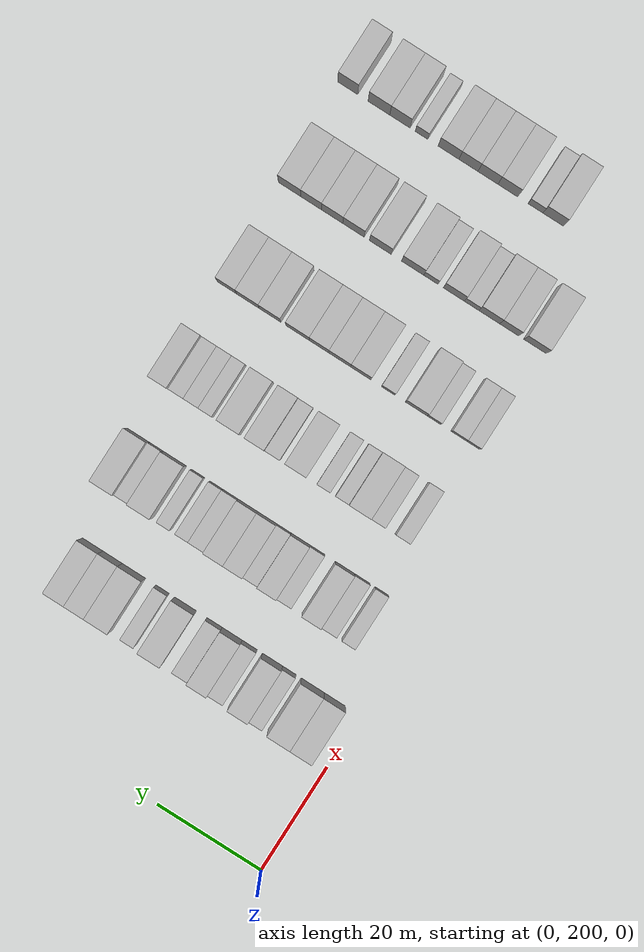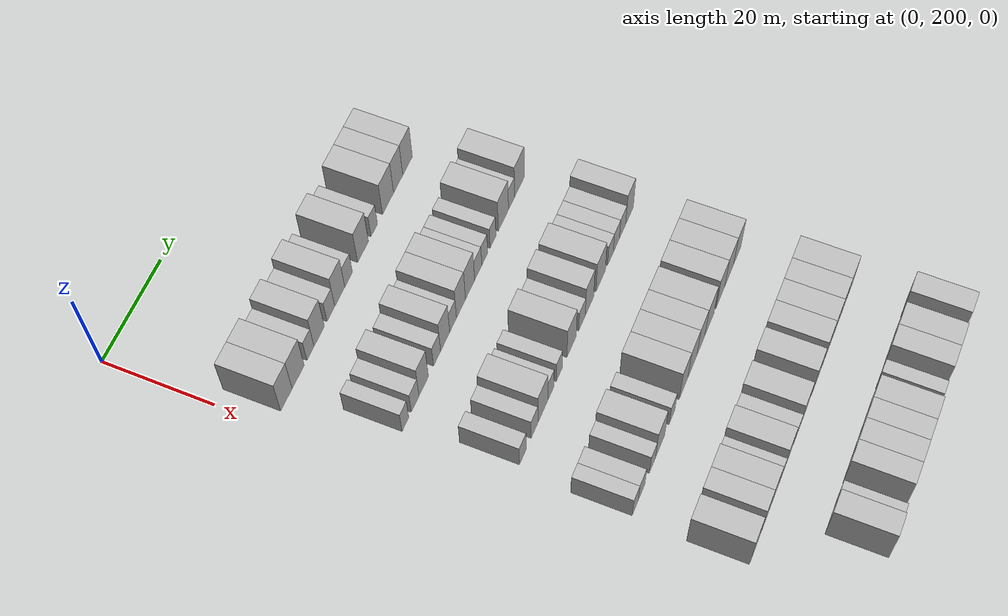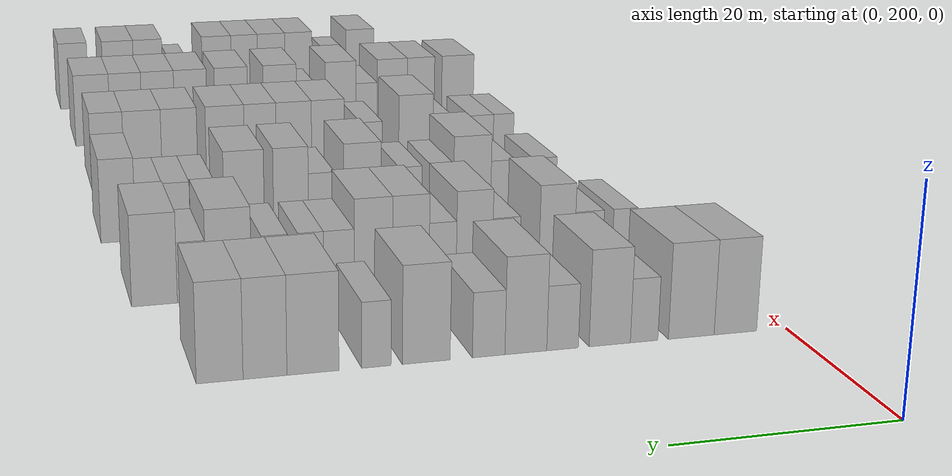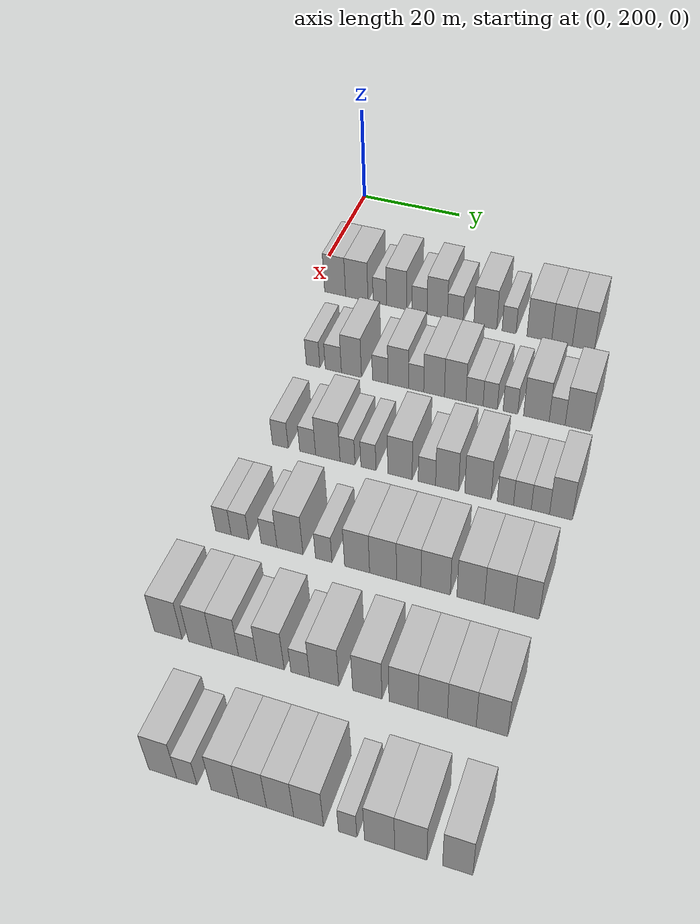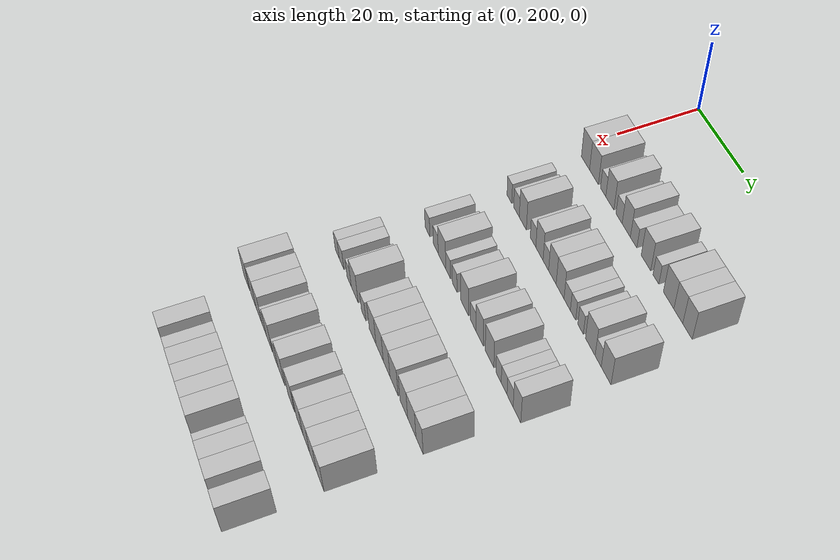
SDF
<sdf version="1.6">
 <world name="default">
  <model name="building_136">
   <static>1</static>
   <pose>25.0000 204.9654 0 0.000000 0.000000 0.000000</pose>
   <link name="link">
    <pose>0 0 4.50 0 0 0</pose>
    <collision name="collision"><geometry><box><size>10.0000 4.1305 9.0000</size></box></geometry></collision>
    <visual name="visual">
     <cast_shadows>0</cast_shadows>
     <geometry><box><size>10.0000 4.1305 9.0000</size></box></geometry>
     <material>
      <script>
       <uri>model://HANNAS_wall/materials/scripts</uri>
       <uri>model://HANNAS_wall/materials/textures</uri>
       <name>vrc/HANNAS_wall</name>
      </script>
     </material>
    </visual>
   </link>
  </model>
  <model name="building_137">
   <static>1</static>
   <pose>25.0000 209.2279 0 0.000000 0.000000 0.000000</pose>
   <link name="link">
    <pose>0 0 4.50 0 0 0</pose>
    <collision name="collision"><geometry><box><size>10.0000 4.3945 9.0000</size></box></geometry></collision>
    <visual name="visual">
     <cast_shadows>0</cast_shadows>
     <geometry><box><size>10.0000 4.3945 9.0000</size></box></geometry>
     <material>
      <script>
       <uri>model://HANNAS_wall/materials/scripts</uri>
       <uri>model://HANNAS_wall/materials/textures</uri>
       <name>vrc/HANNAS_wall</name>
      </script>
     </material>
    </visual>
   </link>
  </model>
  <model name="building_138">
   <static>1</static>
   <pose>25.0000 213.7284 0 0.000000 0.000000 0.000000</pose>
   <link name="link">
    <pose>0 0 3.00 0 0 0</pose>
    <collision name="collision"><geometry><box><size>10.0000 2.6065 6.0000</size></box></geometry></collision>
    <visual name="visual">
     <cast_shadows>0</cast_shadows>
     <geometry><box><size>10.0000 2.6065 6.0000</size></box></geometry>
     <material>
      <script>
       <uri>model://HANNAS_wall/materials/scripts</uri>
       <uri>model://HANNAS_wall/materials/textures</uri>
       <name>vrc/HANNAS_wall</name>
      </script>
     </material>
    </visual>
   </link>
  </model>
  <model name="building_139">
   <static>1</static>
   <pose>25.0000 216.9702 0 0.000000 0.000000 0.000000</pose>
   <link name="link">
    <pose>0 0 4.50 0 0 0</pose>
    <collision name="collision"><geometry><box><size>10.0000 3.8771 9.0000</size></box></geometry></collision>
    <visual name="visual">
     <cast_shadows>0</cast_shadows>
     <geometry><box><size>10.0000 3.8771 9.0000</size></box></geometry>
     <material>
      <script>
       <uri>model://HANNAS_wall/materials/scripts</uri>
       <uri>model://HANNAS_wall/materials/textures</uri>
       <name>vrc/HANNAS_wall</name>
      </script>
     </material>
    </visual>
   </link>
  </model>
  <model name="building_140">
   <static>1</static>
   <pose>25.0000 221.3733 0 0.000000 0.000000 0.000000</pose>
   <link name="link">
    <pose>0 0 3.00 0 0 0</pose>
    <collision name="collision"><geometry><box><size>10.0000 2.9291 6.0000</size></box></geometry></collision>
    <visual name="visual">
     <cast_shadows>0</cast_shadows>
     <geometry><box><size>10.0000 2.9291 6.0000</size></box></geometry>
     <material>
      <script>
       <uri>model://HANNAS_wall/materials/scripts</uri>
       <uri>model://HANNAS_wall/materials/textures</uri>
       <name>vrc/HANNAS_wall</name>
      </script>
     </material>
    </visual>
   </link>
  </model>
  <model name="building_141">
   <static>1</static>
   <pose>25.0000 224.7571 0 0.000000 0.000000 0.000000</pose>
   <link name="link">
    <pose>0 0 4.50 0 0 0</pose>
    <collision name="collision"><geometry><box><size>10.0000 3.8384 9.0000</size></box></geometry></collision>
    <visual name="visual">
     <cast_shadows>0</cast_shadows>
     <geometry><box><size>10.0000 3.8384 9.0000</size></box></geometry>
     <material>
      <script>
       <uri>model://HANNAS_wall/materials/scripts</uri>
       <uri>model://HANNAS_wall/materials/textures</uri>
       <name>vrc/HANNAS_wall</name>
      </script>
     </material>
    </visual>
   </link>
  </model>
  <model name="building_142">
   <static>1</static>
   <pose>25.0000 228.1530 0 0.000000 0.000000 0.000000</pose>
   <link name="link">
    <pose>0 0 3.00 0 0 0</pose>
    <collision name="collision"><geometry><box><size>10.0000 2.9534 6.0000</size></box></geometry></collision>
    <visual name="visual">
     <cast_shadows>0</cast_shadows>
     <geometry><box><size>10.0000 2.9534 6.0000</size></box></geometry>
     <material>
      <script>
       <uri>model://HANNAS_wall/materials/scripts</uri>
       <uri>model://HANNAS_wall/materials/textures</uri>
       <name>vrc/HANNAS_wall</name>
      </script>
     </material>
    </visual>
   </link>
  </model>
  <model name="building_143">
   <static>1</static>
   <pose>25.0000 233.7658 0 0.000000 0.000000 0.000000</pose>
   <link name="link">
    <pose>0 0 4.50 0 0 0</pose>
    <collision name="collision"><geometry><box><size>10.0000 4.2721 9.0000</size></box></geometry></collision>
    <visual name="visual">
     <cast_shadows>0</cast_shadows>
     <geometry><box><size>10.0000 4.2721 9.0000</size></box></geometry>
     <material>
      <script>
       <uri>model://HANNAS_wall/materials/scripts</uri>
       <uri>model://HANNAS_wall/materials/textures</uri>
       <name>vrc/HANNAS_wall</name>
      </script>
     </material>
    </visual>
   </link>
  </model>
  <model name="building_144">
   <static>1</static>
   <pose>25.0000 238.1874 0 0.000000 0.000000 0.000000</pose>
   <link name="link">
    <pose>0 0 3.00 0 0 0</pose>
    <collision name="collision"><geometry><box><size>10.0000 2.5711 6.0000</size></box></geometry></collision>
    <visual name="visual">
     <cast_shadows>0</cast_shadows>
     <geometry><box><size>10.0000 2.5711 6.0000</size></box></geometry>
     <material>
      <script>
       <uri>model://HANNAS_wall/materials/scripts</uri>
       <uri>model://HANNAS_wall/materials/textures</uri>
       <name>vrc/HANNAS_wall</name>
      </script>
     </material>
    </visual>
   </link>
  </model>
  <model name="building_145">
   <static>1</static>
   <pose>25.0000 243.7225 0 0.000000 0.000000 0.000000</pose>
   <link name="link">
    <pose>0 0 4.50 0 0 0</pose>
    <collision name="collision"><geometry><box><size>10.0000 4.4990 9.0000</size></box></geometry></collision>
    <visual name="visual">
     <cast_shadows>0</cast_shadows>
     <geometry><box><size>10.0000 4.4990 9.0000</size></box></geometry>
     <material>
      <script>
       <uri>model://HANNAS_wall/materials/scripts</uri>
       <uri>model://HANNAS_wall/materials/textures</uri>
       <name>vrc/HANNAS_wall</name>
      </script>
     </material>
    </visual>
   </link>
  </model>
  <model name="building_146">
   <static>1</static>
   <pose>25.0000 247.8467 0 0.000000 0.000000 0.000000</pose>
   <link name="link">
    <pose>0 0 4.50 0 0 0</pose>
    <collision name="collision"><geometry><box><size>10.0000 3.7493 9.0000</size></box></geometry></collision>
    <visual name="visual">
     <cast_shadows>0</cast_shadows>
     <geometry><box><size>10.0000 3.7493 9.0000</size></box></geometry>
     <material>
      <script>
       <uri>model://HANNAS_wall/materials/scripts</uri>
       <uri>model://HANNAS_wall/materials/textures</uri>
       <name>vrc/HANNAS_wall</name>
      </script>
     </material>
    </visual>
   </link>
  </model>
  <model name="building_147">
   <static>1</static>
   <pose>25.0000 251.6991 0 0.000000 0.000000 0.000000</pose>
   <link name="link">
    <pose>0 0 4.50 0 0 0</pose>
    <collision name="collision"><geometry><box><size>10.0000 3.9556 9.0000</size></box></geometry></collision>
    <visual name="visual">
     <cast_shadows>0</cast_shadows>
     <geometry><box><size>10.0000 3.9556 9.0000</size></box></geometry>
     <material>
      <script>
       <uri>model://HANNAS_wall/materials/scripts</uri>
       <uri>model://HANNAS_wall/materials/textures</uri>
       <name>vrc/HANNAS_wall</name>
      </script>
     </material>
    </visual>
   </link>
  </model>
  <model name="building_307">
   <static>1</static>
   <pose>44.0000 208.0831 0 0.000000 0.000000 0.000000</pose>
   <link name="link">
    <pose>0 0 3.00 0 0 0</pose>
    <collision name="collision"><geometry><box><size>10.0000 2.5302 6.0000</size></box></geometry></collision>
    <visual name="visual">
     <cast_shadows>0</cast_shadows>
     <geometry><box><size>10.0000 2.5302 6.0000</size></box></geometry>
     <material>
      <script>
       <uri>model://HANNAS_wall/materials/scripts</uri>
       <uri>model://HANNAS_wall/materials/textures</uri>
       <name>vrc/HANNAS_wall</name>
      </script>
     </material>
    </visual>
   </link>
  </model>
  <model name="building_308">
   <static>1</static>
   <pose>44.0000 211.8376 0 0.000000 0.000000 0.000000</pose>
   <link name="link">
    <pose>0 0 3.00 0 0 0</pose>
    <collision name="collision"><geometry><box><size>10.0000 2.9789 6.0000</size></box></geometry></collision>
    <visual name="visual">
     <cast_shadows>0</cast_shadows>
     <geometry><box><size>10.0000 2.9789 6.0000</size></box></geometry>
     <material>
      <script>
       <uri>model://HANNAS_wall/materials/scripts</uri>
       <uri>model://HANNAS_wall/materials/textures</uri>
       <name>vrc/HANNAS_wall</name>
      </script>
     </material>
    </visual>
   </link>
  </model>
  <model name="building_309">
   <static>1</static>
   <pose>44.0000 215.1687 0 0.000000 0.000000 0.000000</pose>
   <link name="link">
    <pose>0 0 4.50 0 0 0</pose>
    <collision name="collision"><geometry><box><size>10.0000 3.6832 9.0000</size></box></geometry></collision>
    <visual name="visual">
     <cast_shadows>0</cast_shadows>
     <geometry><box><size>10.0000 3.6832 9.0000</size></box></geometry>
     <material>
      <script>
       <uri>model://HANNAS_wall/materials/scripts</uri>
       <uri>model://HANNAS_wall/materials/textures</uri>
       <name>vrc/HANNAS_wall</name>
      </script>
     </material>
    </visual>
   </link>
  </model>
  <model name="building_310">
   <static>1</static>
   <pose>44.0000 220.4211 0 0.000000 0.000000 0.000000</pose>
   <link name="link">
    <pose>0 0 3.00 0 0 0</pose>
    <collision name="collision"><geometry><box><size>10.0000 2.8217 6.0000</size></box></geometry></collision>
    <visual name="visual">
     <cast_shadows>0</cast_shadows>
     <geometry><box><size>10.0000 2.8217 6.0000</size></box></geometry>
     <material>
      <script>
       <uri>model://HANNAS_wall/materials/scripts</uri>
       <uri>model://HANNAS_wall/materials/textures</uri>
       <name>vrc/HANNAS_wall</name>
      </script>
     </material>
    </visual>
   </link>
  </model>
  <model name="building_311">
   <static>1</static>
   <pose>44.0000 223.6655 0 0.000000 0.000000 0.000000</pose>
   <link name="link">
    <pose>0 0 4.50 0 0 0</pose>
    <collision name="collision"><geometry><box><size>10.0000 3.6672 9.0000</size></box></geometry></collision>
    <visual name="visual">
     <cast_shadows>0</cast_shadows>
     <geometry><box><size>10.0000 3.6672 9.0000</size></box></geometry>
     <material>
      <script>
       <uri>model://HANNAS_wall/materials/scripts</uri>
       <uri>model://HANNAS_wall/materials/textures</uri>
       <name>vrc/HANNAS_wall</name>
      </script>
     </material>
    </visual>
   </link>
  </model>
  <model name="building_312">
   <static>1</static>
   <pose>44.0000 226.8688 0 0.000000 0.000000 0.000000</pose>
   <link name="link">
    <pose>0 0 3.00 0 0 0</pose>
    <collision name="collision"><geometry><box><size>10.0000 2.7395 6.0000</size></box></geometry></collision>
    <visual name="visual">
     <cast_shadows>0</cast_shadows>
     <geometry><box><size>10.0000 2.7395 6.0000</size></box></geometry>
     <material>
      <script>
       <uri>model://HANNAS_wall/materials/scripts</uri>
       <uri>model://HANNAS_wall/materials/textures</uri>
       <name>vrc/HANNAS_wall</name>
      </script>
     </material>
    </visual>
   </link>
  </model>
  <model name="building_313">
   <static>1</static>
   <pose>44.0000 230.0784 0 0.000000 0.000000 0.000000</pose>
   <link name="link">
    <pose>0 0 4.50 0 0 0</pose>
    <collision name="collision"><geometry><box><size>10.0000 3.6797 9.0000</size></box></geometry></collision>
    <visual name="visual">
     <cast_shadows>0</cast_shadows>
     <geometry><box><size>10.0000 3.6797 9.0000</size></box></geometry>
     <material>
      <script>
       <uri>model://HANNAS_wall/materials/scripts</uri>
       <uri>model://HANNAS_wall/materials/textures</uri>
       <name>vrc/HANNAS_wall</name>
      </script>
     </material>
    </visual>
   </link>
  </model>
  <model name="building_314">
   <static>1</static>
   <pose>44.0000 233.8138 0 0.000000 0.000000 0.000000</pose>
   <link name="link">
    <pose>0 0 4.50 0 0 0</pose>
    <collision name="collision"><geometry><box><size>10.0000 3.7912 9.0000</size></box></geometry></collision>
    <visual name="visual">
     <cast_shadows>0</cast_shadows>
     <geometry><box><size>10.0000 3.7912 9.0000</size></box></geometry>
     <material>
      <script>
       <uri>model://HANNAS_wall/materials/scripts</uri>
       <uri>model://HANNAS_wall/materials/textures</uri>
       <name>vrc/HANNAS_wall</name>
      </script>
     </material>
    </visual>
   </link>
  </model>
  <model name="building_315">
   <static>1</static>
   <pose>44.0000 237.2076 0 0.000000 0.000000 0.000000</pose>
   <link name="link">
    <pose>0 0 3.00 0 0 0</pose>
    <collision name="collision"><geometry><box><size>10.0000 2.9964 6.0000</size></box></geometry></collision>
    <visual name="visual">
     <cast_shadows>0</cast_shadows>
     <geometry><box><size>10.0000 2.9964 6.0000</size></box></geometry>
     <material>
      <script>
       <uri>model://HANNAS_wall/materials/scripts</uri>
       <uri>model://HANNAS_wall/materials/textures</uri>
       <name>vrc/HANNAS_wall</name>
      </script>
     </material>
    </visual>
   </link>
  </model>
  <model name="building_316">
   <static>1</static>
   <pose>44.0000 239.9483 0 0.000000 0.000000 0.000000</pose>
   <link name="link">
    <pose>0 0 3.00 0 0 0</pose>
    <collision name="collision"><geometry><box><size>10.0000 2.4849 6.0000</size></box></geometry></collision>
    <visual name="visual">
     <cast_shadows>0</cast_shadows>
     <geometry><box><size>10.0000 2.4849 6.0000</size></box></geometry>
     <material>
      <script>
       <uri>model://HANNAS_wall/materials/scripts</uri>
       <uri>model://HANNAS_wall/materials/textures</uri>
       <name>vrc/HANNAS_wall</name>
      </script>
     </material>
    </visual>
   </link>
  </model>
  <model name="building_317">
   <static>1</static>
   <pose>44.0000 243.4521 0 0.000000 0.000000 0.000000</pose>
   <link name="link">
    <pose>0 0 3.00 0 0 0</pose>
    <collision name="collision"><geometry><box><size>10.0000 2.5227 6.0000</size></box></geometry></collision>
    <visual name="visual">
     <cast_shadows>0</cast_shadows>
     <geometry><box><size>10.0000 2.5227 6.0000</size></box></geometry>
     <material>
      <script>
       <uri>model://HANNAS_wall/materials/scripts</uri>
       <uri>model://HANNAS_wall/materials/textures</uri>
       <name>vrc/HANNAS_wall</name>
      </script>
     </material>
    </visual>
   </link>
  </model>
  <model name="building_318">
   <static>1</static>
   <pose>44.0000 247.8932 0 0.000000 0.000000 0.000000</pose>
   <link name="link">
    <pose>0 0 4.50 0 0 0</pose>
    <collision name="collision"><geometry><box><size>10.0000 4.3594 9.0000</size></box></geometry></collision>
    <visual name="visual">
     <cast_shadows>0</cast_shadows>
     <geometry><box><size>10.0000 4.3594 9.0000</size></box></geometry>
     <material>
      <script>
       <uri>model://HANNAS_wall/materials/scripts</uri>
       <uri>model://HANNAS_wall/materials/textures</uri>
       <name>vrc/HANNAS_wall</name>
      </script>
     </material>
    </visual>
   </link>
  </model>
  <model name="building_319">
   <static>1</static>
   <pose>44.0000 251.4282 0 0.000000 0.000000 0.000000</pose>
   <link name="link">
    <pose>0 0 3.00 0 0 0</pose>
    <collision name="collision"><geometry><box><size>10.0000 2.7107 6.0000</size></box></geometry></collision>
    <visual name="visual">
     <cast_shadows>0</cast_shadows>
     <geometry><box><size>10.0000 2.7107 6.0000</size></box></geometry>
     <material>
      <script>
       <uri>model://HANNAS_wall/materials/scripts</uri>
       <uri>model://HANNAS_wall/materials/textures</uri>
       <name>vrc/HANNAS_wall</name>
      </script>
     </material>
    </visual>
   </link>
  </model>
  <model name="building_320">
   <static>1</static>
   <pose>44.0000 254.9321 0 0.000000 0.000000 0.000000</pose>
   <link name="link">
    <pose>0 0 4.50 0 0 0</pose>
    <collision name="collision"><geometry><box><size>10.0000 4.2970 9.0000</size></box></geometry></collision>
    <visual name="visual">
     <cast_shadows>0</cast_shadows>
     <geometry><box><size>10.0000 4.2970 9.0000</size></box></geometry>
     <material>
      <script>
       <uri>model://HANNAS_wall/materials/scripts</uri>
       <uri>model://HANNAS_wall/materials/textures</uri>
       <name>vrc/HANNAS_wall</name>
      </script>
     </material>
    </visual>
   </link>
  </model>
  <model name="building_483">
   <static>1</static>
   <pose>63.0000 209.8535 0 0.000000 0.000000 0.000000</pose>
   <link name="link">
    <pose>0 0 3.00 0 0 0</pose>
    <collision name="collision"><geometry><box><size>10.0000 2.7739 6.0000</size></box></geometry></collision>
    <visual name="visual">
     <cast_shadows>0</cast_shadows>
     <geometry><box><size>10.0000 2.7739 6.0000</size></box></geometry>
     <material>
      <script>
       <uri>model://HANNAS_wall/materials/scripts</uri>
       <uri>model://HANNAS_wall/materials/textures</uri>
       <name>vrc/HANNAS_wall</name>
      </script>
     </material>
    </visual>
   </link>
  </model>
  <model name="building_484">
   <static>1</static>
   <pose>63.0000 214.6165 0 0.000000 0.000000 0.000000</pose>
   <link name="link">
    <pose>0 0 3.00 0 0 0</pose>
    <collision name="collision"><geometry><box><size>10.0000 2.7522 6.0000</size></box></geometry></collision>
    <visual name="visual">
     <cast_shadows>0</cast_shadows>
     <geometry><box><size>10.0000 2.7522 6.0000</size></box></geometry>
     <material>
      <script>
       <uri>model://HANNAS_wall/materials/scripts</uri>
       <uri>model://HANNAS_wall/materials/textures</uri>
       <name>vrc/HANNAS_wall</name>
      </script>
     </material>
    </visual>
   </link>
  </model>
  <model name="building_485">
   <static>1</static>
   <pose>63.0000 218.1034 0 0.000000 0.000000 0.000000</pose>
   <link name="link">
    <pose>0 0 4.50 0 0 0</pose>
    <collision name="collision"><geometry><box><size>10.0000 4.2216 9.0000</size></box></geometry></collision>
    <visual name="visual">
     <cast_shadows>0</cast_shadows>
     <geometry><box><size>10.0000 4.2216 9.0000</size></box></geometry>
     <material>
      <script>
       <uri>model://HANNAS_wall/materials/scripts</uri>
       <uri>model://HANNAS_wall/materials/textures</uri>
       <name>vrc/HANNAS_wall</name>
      </script>
     </material>
    </visual>
   </link>
  </model>
  <model name="building_486">
   <static>1</static>
   <pose>63.0000 221.4878 0 0.000000 0.000000 0.000000</pose>
   <link name="link">
    <pose>0 0 3.00 0 0 0</pose>
    <collision name="collision"><geometry><box><size>10.0000 2.5471 6.0000</size></box></geometry></collision>
    <visual name="visual">
     <cast_shadows>0</cast_shadows>
     <geometry><box><size>10.0000 2.5471 6.0000</size></box></geometry>
     <material>
      <script>
       <uri>model://HANNAS_wall/materials/scripts</uri>
       <uri>model://HANNAS_wall/materials/textures</uri>
       <name>vrc/HANNAS_wall</name>
      </script>
     </material>
    </visual>
   </link>
  </model>
  <model name="building_487">
   <static>1</static>
   <pose>63.0000 225.0405 0 0.000000 0.000000 0.000000</pose>
   <link name="link">
    <pose>0 0 3.00 0 0 0</pose>
    <collision name="collision"><geometry><box><size>10.0000 2.5583 6.0000</size></box></geometry></collision>
    <visual name="visual">
     <cast_shadows>0</cast_shadows>
     <geometry><box><size>10.0000 2.5583 6.0000</size></box></geometry>
     <material>
      <script>
       <uri>model://HANNAS_wall/materials/scripts</uri>
       <uri>model://HANNAS_wall/materials/textures</uri>
       <name>vrc/HANNAS_wall</name>
      </script>
     </material>
    </visual>
   </link>
  </model>
  <model name="building_488">
   <static>1</static>
   <pose>63.0000 230.3641 0 0.000000 0.000000 0.000000</pose>
   <link name="link">
    <pose>0 0 4.50 0 0 0</pose>
    <collision name="collision"><geometry><box><size>10.0000 4.0890 9.0000</size></box></geometry></collision>
    <visual name="visual">
     <cast_shadows>0</cast_shadows>
     <geometry><box><size>10.0000 4.0890 9.0000</size></box></geometry>
     <material>
      <script>
       <uri>model://HANNAS_wall/materials/scripts</uri>
       <uri>model://HANNAS_wall/materials/textures</uri>
       <name>vrc/HANNAS_wall</name>
      </script>
     </material>
    </visual>
   </link>
  </model>
  <model name="building_489">
   <static>1</static>
   <pose>63.0000 234.8454 0 0.000000 0.000000 0.000000</pose>
   <link name="link">
    <pose>0 0 3.00 0 0 0</pose>
    <collision name="collision"><geometry><box><size>10.0000 2.8735 6.0000</size></box></geometry></collision>
    <visual name="visual">
     <cast_shadows>0</cast_shadows>
     <geometry><box><size>10.0000 2.8735 6.0000</size></box></geometry>
     <material>
      <script>
       <uri>model://HANNAS_wall/materials/scripts</uri>
       <uri>model://HANNAS_wall/materials/textures</uri>
       <name>vrc/HANNAS_wall</name>
      </script>
     </material>
    </visual>
   </link>
  </model>
  <model name="building_490">
   <static>1</static>
   <pose>63.0000 238.1685 0 0.000000 0.000000 0.000000</pose>
   <link name="link">
    <pose>0 0 4.50 0 0 0</pose>
    <collision name="collision"><geometry><box><size>10.0000 3.7727 9.0000</size></box></geometry></collision>
    <visual name="visual">
     <cast_shadows>0</cast_shadows>
     <geometry><box><size>10.0000 3.7727 9.0000</size></box></geometry>
     <material>
      <script>
       <uri>model://HANNAS_wall/materials/scripts</uri>
       <uri>model://HANNAS_wall/materials/textures</uri>
       <name>vrc/HANNAS_wall</name>
      </script>
     </material>
    </visual>
   </link>
  </model>
  <model name="building_491">
   <static>1</static>
   <pose>63.0000 243.1991 0 0.000000 0.000000 0.000000</pose>
   <link name="link">
    <pose>0 0 4.50 0 0 0</pose>
    <collision name="collision"><geometry><box><size>10.0000 4.2886 9.0000</size></box></geometry></collision>
    <visual name="visual">
     <cast_shadows>0</cast_shadows>
     <geometry><box><size>10.0000 4.2886 9.0000</size></box></geometry>
     <material>
      <script>
       <uri>model://HANNAS_wall/materials/scripts</uri>
       <uri>model://HANNAS_wall/materials/textures</uri>
       <name>vrc/HANNAS_wall</name>
      </script>
     </material>
    </visual>
   </link>
  </model>
  <model name="building_492">
   <static>1</static>
   <pose>63.0000 247.6447 0 0.000000 0.000000 0.000000</pose>
   <link name="link">
    <pose>0 0 3.00 0 0 0</pose>
    <collision name="collision"><geometry><box><size>10.0000 2.6026 6.0000</size></box></geometry></collision>
    <visual name="visual">
     <cast_shadows>0</cast_shadows>
     <geometry><box><size>10.0000 2.6026 6.0000</size></box></geometry>
     <material>
      <script>
       <uri>model://HANNAS_wall/materials/scripts</uri>
       <uri>model://HANNAS_wall/materials/textures</uri>
       <name>vrc/HANNAS_wall</name>
      </script>
     </material>
    </visual>
   </link>
  </model>
  <model name="building_493">
   <static>1</static>
   <pose>63.0000 250.3606 0 0.000000 0.000000 0.000000</pose>
   <link name="link">
    <pose>0 0 3.00 0 0 0</pose>
    <collision name="collision"><geometry><box><size>10.0000 2.8292 6.0000</size></box></geometry></collision>
    <visual name="visual">
     <cast_shadows>0</cast_shadows>
     <geometry><box><size>10.0000 2.8292 6.0000</size></box></geometry>
     <material>
      <script>
       <uri>model://HANNAS_wall/materials/scripts</uri>
       <uri>model://HANNAS_wall/materials/textures</uri>
       <name>vrc/HANNAS_wall</name>
      </script>
     </material>
    </visual>
   </link>
  </model>
  <model name="building_494">
   <static>1</static>
   <pose>63.0000 253.2262 0 0.000000 0.000000 0.000000</pose>
   <link name="link">
    <pose>0 0 3.00 0 0 0</pose>
    <collision name="collision"><geometry><box><size>10.0000 2.9020 6.0000</size></box></geometry></collision>
    <visual name="visual">
     <cast_shadows>0</cast_shadows>
     <geometry><box><size>10.0000 2.9020 6.0000</size></box></geometry>
     <material>
      <script>
       <uri>model://HANNAS_wall/materials/scripts</uri>
       <uri>model://HANNAS_wall/materials/textures</uri>
       <name>vrc/HANNAS_wall</name>
      </script>
     </material>
    </visual>
   </link>
  </model>
  <model name="building_495">
   <static>1</static>
   <pose>63.0000 256.4780 0 0.000000 0.000000 0.000000</pose>
   <link name="link">
    <pose>0 0 4.50 0 0 0</pose>
    <collision name="collision"><geometry><box><size>10.0000 3.6017 9.0000</size></box></geometry></collision>
    <visual name="visual">
     <cast_shadows>0</cast_shadows>
     <geometry><box><size>10.0000 3.6017 9.0000</size></box></geometry>
     <material>
      <script>
       <uri>model://HANNAS_wall/materials/scripts</uri>
       <uri>model://HANNAS_wall/materials/textures</uri>
       <name>vrc/HANNAS_wall</name>
      </script>
     </material>
    </visual>
   </link>
  </model>
  <model name="building_640">
   <static>1</static>
   <pose>82.0000 208.4094 0 0.000000 0.000000 0.000000</pose>
   <link name="link">
    <pose>0 0 3.00 0 0 0</pose>
    <collision name="collision"><geometry><box><size>10.0000 2.5563 6.0000</size></box></geometry></collision>
    <visual name="visual">
     <cast_shadows>0</cast_shadows>
     <geometry><box><size>10.0000 2.5563 6.0000</size></box></geometry>
     <material>
      <script>
       <uri>model://HANNAS_wall/materials/scripts</uri>
       <uri>model://HANNAS_wall/materials/textures</uri>
       <name>vrc/HANNAS_wall</name>
      </script>
     </material>
    </visual>
   </link>
  </model>
  <model name="building_641">
   <static>1</static>
   <pose>82.0000 211.1524 0 0.000000 0.000000 0.000000</pose>
   <link name="link">
    <pose>0 0 3.00 0 0 0</pose>
    <collision name="collision"><geometry><box><size>10.0000 2.9297 6.0000</size></box></geometry></collision>
    <visual name="visual">
     <cast_shadows>0</cast_shadows>
     <geometry><box><size>10.0000 2.9297 6.0000</size></box></geometry>
     <material>
      <script>
       <uri>model://HANNAS_wall/materials/scripts</uri>
       <uri>model://HANNAS_wall/materials/textures</uri>
       <name>vrc/HANNAS_wall</name>
      </script>
     </material>
    </visual>
   </link>
  </model>
  <model name="building_642">
   <static>1</static>
   <pose>82.0000 215.9216 0 0.000000 0.000000 0.000000</pose>
   <link name="link">
    <pose>0 0 3.00 0 0 0</pose>
    <collision name="collision"><geometry><box><size>10.0000 2.6086 6.0000</size></box></geometry></collision>
    <visual name="visual">
     <cast_shadows>0</cast_shadows>
     <geometry><box><size>10.0000 2.6086 6.0000</size></box></geometry>
     <material>
      <script>
       <uri>model://HANNAS_wall/materials/scripts</uri>
       <uri>model://HANNAS_wall/materials/textures</uri>
       <name>vrc/HANNAS_wall</name>
      </script>
     </material>
    </visual>
   </link>
  </model>
  <model name="building_643">
   <static>1</static>
   <pose>82.0000 219.3272 0 0.000000 0.000000 0.000000</pose>
   <link name="link">
    <pose>0 0 4.50 0 0 0</pose>
    <collision name="collision"><geometry><box><size>10.0000 4.2025 9.0000</size></box></geometry></collision>
    <visual name="visual">
     <cast_shadows>0</cast_shadows>
     <geometry><box><size>10.0000 4.2025 9.0000</size></box></geometry>
     <material>
      <script>
       <uri>model://HANNAS_wall/materials/scripts</uri>
       <uri>model://HANNAS_wall/materials/textures</uri>
       <name>vrc/HANNAS_wall</name>
      </script>
     </material>
    </visual>
   </link>
  </model>
  <model name="building_644">
   <static>1</static>
   <pose>82.0000 224.7485 0 0.000000 0.000000 0.000000</pose>
   <link name="link">
    <pose>0 0 3.00 0 0 0</pose>
    <collision name="collision"><geometry><box><size>10.0000 2.6401 6.0000</size></box></geometry></collision>
    <visual name="visual">
     <cast_shadows>0</cast_shadows>
     <geometry><box><size>10.0000 2.6401 6.0000</size></box></geometry>
     <material>
      <script>
       <uri>model://HANNAS_wall/materials/scripts</uri>
       <uri>model://HANNAS_wall/materials/textures</uri>
       <name>vrc/HANNAS_wall</name>
      </script>
     </material>
    </visual>
   </link>
  </model>
  <model name="building_645">
   <static>1</static>
   <pose>82.0000 230.0315 0 0.000000 0.000000 0.000000</pose>
   <link name="link">
    <pose>0 0 4.50 0 0 0</pose>
    <collision name="collision"><geometry><box><size>10.0000 3.9258 9.0000</size></box></geometry></collision>
    <visual name="visual">
     <cast_shadows>0</cast_shadows>
     <geometry><box><size>10.0000 3.9258 9.0000</size></box></geometry>
     <material>
      <script>
       <uri>model://HANNAS_wall/materials/scripts</uri>
       <uri>model://HANNAS_wall/materials/textures</uri>
       <name>vrc/HANNAS_wall</name>
      </script>
     </material>
    </visual>
   </link>
  </model>
  <model name="building_646">
   <static>1</static>
   <pose>82.0000 234.0939 0 0.000000 0.000000 0.000000</pose>
   <link name="link">
    <pose>0 0 4.50 0 0 0</pose>
    <collision name="collision"><geometry><box><size>10.0000 4.1990 9.0000</size></box></geometry></collision>
    <visual name="visual">
     <cast_shadows>0</cast_shadows>
     <geometry><box><size>10.0000 4.1990 9.0000</size></box></geometry>
     <material>
      <script>
       <uri>model://HANNAS_wall/materials/scripts</uri>
       <uri>model://HANNAS_wall/materials/textures</uri>
       <name>vrc/HANNAS_wall</name>
      </script>
     </material>
    </visual>
   </link>
  </model>
  <model name="building_647">
   <static>1</static>
   <pose>82.0000 238.0734 0 0.000000 0.000000 0.000000</pose>
   <link name="link">
    <pose>0 0 4.50 0 0 0</pose>
    <collision name="collision"><geometry><box><size>10.0000 3.7602 9.0000</size></box></geometry></collision>
    <visual name="visual">
     <cast_shadows>0</cast_shadows>
     <geometry><box><size>10.0000 3.7602 9.0000</size></box></geometry>
     <material>
      <script>
       <uri>model://HANNAS_wall/materials/scripts</uri>
       <uri>model://HANNAS_wall/materials/textures</uri>
       <name>vrc/HANNAS_wall</name>
      </script>
     </material>
    </visual>
   </link>
  </model>
  <model name="building_648">
   <static>1</static>
   <pose>82.0000 242.1982 0 0.000000 0.000000 0.000000</pose>
   <link name="link">
    <pose>0 0 4.50 0 0 0</pose>
    <collision name="collision"><geometry><box><size>10.0000 4.4894 9.0000</size></box></geometry></collision>
    <visual name="visual">
     <cast_shadows>0</cast_shadows>
     <geometry><box><size>10.0000 4.4894 9.0000</size></box></geometry>
     <material>
      <script>
       <uri>model://HANNAS_wall/materials/scripts</uri>
       <uri>model://HANNAS_wall/materials/textures</uri>
       <name>vrc/HANNAS_wall</name>
      </script>
     </material>
    </visual>
   </link>
  </model>
  <model name="building_649">
   <static>1</static>
   <pose>82.0000 247.5139 0 0.000000 0.000000 0.000000</pose>
   <link name="link">
    <pose>0 0 4.50 0 0 0</pose>
    <collision name="collision"><geometry><box><size>10.0000 4.1421 9.0000</size></box></geometry></collision>
    <visual name="visual">
     <cast_shadows>0</cast_shadows>
     <geometry><box><size>10.0000 4.1421 9.0000</size></box></geometry>
     <material>
      <script>
       <uri>model://HANNAS_wall/materials/scripts</uri>
       <uri>model://HANNAS_wall/materials/textures</uri>
       <name>vrc/HANNAS_wall</name>
      </script>
     </material>
    </visual>
   </link>
  </model>
  <model name="building_650">
   <static>1</static>
   <pose>82.0000 251.7611 0 0.000000 0.000000 0.000000</pose>
   <link name="link">
    <pose>0 0 4.50 0 0 0</pose>
    <collision name="collision"><geometry><box><size>10.0000 4.3523 9.0000</size></box></geometry></collision>
    <visual name="visual">
     <cast_shadows>0</cast_shadows>
     <geometry><box><size>10.0000 4.3523 9.0000</size></box></geometry>
     <material>
      <script>
       <uri>model://HANNAS_wall/materials/scripts</uri>
       <uri>model://HANNAS_wall/materials/textures</uri>
       <name>vrc/HANNAS_wall</name>
      </script>
     </material>
    </visual>
   </link>
  </model>
  <model name="building_651">
   <static>1</static>
   <pose>82.0000 255.8063 0 0.000000 0.000000 0.000000</pose>
   <link name="link">
    <pose>0 0 4.50 0 0 0</pose>
    <collision name="collision"><geometry><box><size>10.0000 3.7381 9.0000</size></box></geometry></collision>
    <visual name="visual">
     <cast_shadows>0</cast_shadows>
     <geometry><box><size>10.0000 3.7381 9.0000</size></box></geometry>
     <material>
      <script>
       <uri>model://HANNAS_wall/materials/scripts</uri>
       <uri>model://HANNAS_wall/materials/textures</uri>
       <name>vrc/HANNAS_wall</name>
      </script>
     </material>
    </visual>
   </link>
  </model>
  <model name="building_802">
   <static>1</static>
   <pose>101.0000 208.5531 0 0.000000 0.000000 0.000000</pose>
   <link name="link">
    <pose>0 0 4.50 0 0 0</pose>
    <collision name="collision"><geometry><box><size>10.0000 4.3106 9.0000</size></box></geometry></collision>
    <visual name="visual">
     <cast_shadows>0</cast_shadows>
     <geometry><box><size>10.0000 4.3106 9.0000</size></box></geometry>
     <material>
      <script>
       <uri>model://HANNAS_wall/materials/scripts</uri>
       <uri>model://HANNAS_wall/materials/textures</uri>
       <name>vrc/HANNAS_wall</name>
      </script>
     </material>
    </visual>
   </link>
  </model>
  <model name="building_803">
   <static>1</static>
   <pose>101.0000 213.5333 0 0.000000 0.000000 0.000000</pose>
   <link name="link">
    <pose>0 0 4.50 0 0 0</pose>
    <collision name="collision"><geometry><box><size>10.0000 3.6498 9.0000</size></box></geometry></collision>
    <visual name="visual">
     <cast_shadows>0</cast_shadows>
     <geometry><box><size>10.0000 3.6498 9.0000</size></box></geometry>
     <material>
      <script>
       <uri>model://HANNAS_wall/materials/scripts</uri>
       <uri>model://HANNAS_wall/materials/textures</uri>
       <name>vrc/HANNAS_wall</name>
      </script>
     </material>
    </visual>
   </link>
  </model>
  <model name="building_804">
   <static>1</static>
   <pose>101.0000 217.3677 0 0.000000 0.000000 0.000000</pose>
   <link name="link">
    <pose>0 0 4.50 0 0 0</pose>
    <collision name="collision"><geometry><box><size>10.0000 4.0192 9.0000</size></box></geometry></collision>
    <visual name="visual">
     <cast_shadows>0</cast_shadows>
     <geometry><box><size>10.0000 4.0192 9.0000</size></box></geometry>
     <material>
      <script>
       <uri>model://HANNAS_wall/materials/scripts</uri>
       <uri>model://HANNAS_wall/materials/textures</uri>
       <name>vrc/HANNAS_wall</name>
      </script>
     </material>
    </visual>
   </link>
  </model>
  <model name="building_805">
   <static>1</static>
   <pose>101.0000 220.7824 0 0.000000 0.000000 0.000000</pose>
   <link name="link">
    <pose>0 0 3.00 0 0 0</pose>
    <collision name="collision"><geometry><box><size>10.0000 2.8102 6.0000</size></box></geometry></collision>
    <visual name="visual">
     <cast_shadows>0</cast_shadows>
     <geometry><box><size>10.0000 2.8102 6.0000</size></box></geometry>
     <material>
      <script>
       <uri>model://HANNAS_wall/materials/scripts</uri>
       <uri>model://HANNAS_wall/materials/textures</uri>
       <name>vrc/HANNAS_wall</name>
      </script>
     </material>
    </visual>
   </link>
  </model>
  <model name="building_806">
   <static>1</static>
   <pose>101.0000 224.2153 0 0.000000 0.000000 0.000000</pose>
   <link name="link">
    <pose>0 0 4.50 0 0 0</pose>
    <collision name="collision"><geometry><box><size>10.0000 4.0556 9.0000</size></box></geometry></collision>
    <visual name="visual">
     <cast_shadows>0</cast_shadows>
     <geometry><box><size>10.0000 4.0556 9.0000</size></box></geometry>
     <material>
      <script>
       <uri>model://HANNAS_wall/materials/scripts</uri>
       <uri>model://HANNAS_wall/materials/textures</uri>
       <name>vrc/HANNAS_wall</name>
      </script>
     </material>
    </visual>
   </link>
  </model>
  <model name="building_807">
   <static>1</static>
   <pose>101.0000 228.6222 0 0.000000 0.000000 0.000000</pose>
   <link name="link">
    <pose>0 0 3.00 0 0 0</pose>
    <collision name="collision"><geometry><box><size>10.0000 2.7582 6.0000</size></box></geometry></collision>
    <visual name="visual">
     <cast_shadows>0</cast_shadows>
     <geometry><box><size>10.0000 2.7582 6.0000</size></box></geometry>
     <material>
      <script>
       <uri>model://HANNAS_wall/materials/scripts</uri>
       <uri>model://HANNAS_wall/materials/textures</uri>
       <name>vrc/HANNAS_wall</name>
      </script>
     </material>
    </visual>
   </link>
  </model>
  <model name="building_808">
   <static>1</static>
   <pose>101.0000 232.1564 0 0.000000 0.000000 0.000000</pose>
   <link name="link">
    <pose>0 0 4.50 0 0 0</pose>
    <collision name="collision"><geometry><box><size>10.0000 4.3102 9.0000</size></box></geometry></collision>
    <visual name="visual">
     <cast_shadows>0</cast_shadows>
     <geometry><box><size>10.0000 4.3102 9.0000</size></box></geometry>
     <material>
      <script>
       <uri>model://HANNAS_wall/materials/scripts</uri>
       <uri>model://HANNAS_wall/materials/textures</uri>
       <name>vrc/HANNAS_wall</name>
      </script>
     </material>
    </visual>
   </link>
  </model>
  <model name="building_809">
   <static>1</static>
   <pose>101.0000 238.4228 0 0.000000 0.000000 0.000000</pose>
   <link name="link">
    <pose>0 0 4.50 0 0 0</pose>
    <collision name="collision"><geometry><box><size>10.0000 4.2226 9.0000</size></box></geometry></collision>
    <visual name="visual">
     <cast_shadows>0</cast_shadows>
     <geometry><box><size>10.0000 4.2226 9.0000</size></box></geometry>
     <material>
      <script>
       <uri>model://HANNAS_wall/materials/scripts</uri>
       <uri>model://HANNAS_wall/materials/textures</uri>
       <name>vrc/HANNAS_wall</name>
      </script>
     </material>
    </visual>
   </link>
  </model>
  <model name="building_810">
   <static>1</static>
   <pose>101.0000 243.6015 0 0.000000 0.000000 0.000000</pose>
   <link name="link">
    <pose>0 0 4.50 0 0 0</pose>
    <collision name="collision"><geometry><box><size>10.0000 4.1348 9.0000</size></box></geometry></collision>
    <visual name="visual">
     <cast_shadows>0</cast_shadows>
     <geometry><box><size>10.0000 4.1348 9.0000</size></box></geometry>
     <material>
      <script>
       <uri>model://HANNAS_wall/materials/scripts</uri>
       <uri>model://HANNAS_wall/materials/textures</uri>
       <name>vrc/HANNAS_wall</name>
      </script>
     </material>
    </visual>
   </link>
  </model>
  <model name="building_811">
   <static>1</static>
   <pose>101.0000 247.7231 0 0.000000 0.000000 0.000000</pose>
   <link name="link">
    <pose>0 0 4.50 0 0 0</pose>
    <collision name="collision"><geometry><box><size>10.0000 4.1083 9.0000</size></box></geometry></collision>
    <visual name="visual">
     <cast_shadows>0</cast_shadows>
     <geometry><box><size>10.0000 4.1083 9.0000</size></box></geometry>
     <material>
      <script>
       <uri>model://HANNAS_wall/materials/scripts</uri>
       <uri>model://HANNAS_wall/materials/textures</uri>
       <name>vrc/HANNAS_wall</name>
      </script>
     </material>
    </visual>
   </link>
  </model>
  <model name="building_812">
   <static>1</static>
   <pose>101.0000 251.7736 0 0.000000 0.000000 0.000000</pose>
   <link name="link">
    <pose>0 0 4.50 0 0 0</pose>
    <collision name="collision"><geometry><box><size>10.0000 3.9929 9.0000</size></box></geometry></collision>
    <visual name="visual">
     <cast_shadows>0</cast_shadows>
     <geometry><box><size>10.0000 3.9929 9.0000</size></box></geometry>
     <material>
      <script>
       <uri>model://HANNAS_wall/materials/scripts</uri>
       <uri>model://HANNAS_wall/materials/textures</uri>
       <name>vrc/HANNAS_wall</name>
      </script>
     </material>
    </visual>
   </link>
  </model>
  <model name="building_813">
   <static>1</static>
   <pose>101.0000 255.9363 0 0.000000 0.000000 0.000000</pose>
   <link name="link">
    <pose>0 0 4.50 0 0 0</pose>
    <collision name="collision"><geometry><box><size>10.0000 4.3324 9.0000</size></box></geometry></collision>
    <visual name="visual">
     <cast_shadows>0</cast_shadows>
     <geometry><box><size>10.0000 4.3324 9.0000</size></box></geometry>
     <material>
      <script>
       <uri>model://HANNAS_wall/materials/scripts</uri>
       <uri>model://HANNAS_wall/materials/textures</uri>
       <name>vrc/HANNAS_wall</name>
      </script>
     </material>
    </visual>
   </link>
  </model>
  <model name="building_979">
   <static>1</static>
   <pose>120.0000 217.1982 0 0.000000 0.000000 0.000000</pose>
   <link name="link">
    <pose>0 0 4.50 0 0 0</pose>
    <collision name="collision"><geometry><box><size>10.0000 3.9631 9.0000</size></box></geometry></collision>
    <visual name="visual">
     <cast_shadows>0</cast_shadows>
     <geometry><box><size>10.0000 3.9631 9.0000</size></box></geometry>
     <material>
      <script>
       <uri>model://HANNAS_wall/materials/scripts</uri>
       <uri>model://HANNAS_wall/materials/textures</uri>
       <name>vrc/HANNAS_wall</name>
      </script>
     </material>
    </visual>
   </link>
  </model>
  <model name="building_980">
   <static>1</static>
   <pose>120.0000 220.6010 0 0.000000 0.000000 0.000000</pose>
   <link name="link">
    <pose>0 0 3.00 0 0 0</pose>
    <collision name="collision"><geometry><box><size>10.0000 2.8425 6.0000</size></box></geometry></collision>
    <visual name="visual">
     <cast_shadows>0</cast_shadows>
     <geometry><box><size>10.0000 2.8425 6.0000</size></box></geometry>
     <material>
      <script>
       <uri>model://HANNAS_wall/materials/scripts</uri>
       <uri>model://HANNAS_wall/materials/textures</uri>
       <name>vrc/HANNAS_wall</name>
      </script>
     </material>
    </visual>
   </link>
  </model>
  <model name="building_981">
   <static>1</static>
   <pose>120.0000 225.9375 0 0.000000 0.000000 0.000000</pose>
   <link name="link">
    <pose>0 0 4.50 0 0 0</pose>
    <collision name="collision"><geometry><box><size>10.0000 3.8304 9.0000</size></box></geometry></collision>
    <visual name="visual">
     <cast_shadows>0</cast_shadows>
     <geometry><box><size>10.0000 3.8304 9.0000</size></box></geometry>
     <material>
      <script>
       <uri>model://HANNAS_wall/materials/scripts</uri>
       <uri>model://HANNAS_wall/materials/textures</uri>
       <name>vrc/HANNAS_wall</name>
      </script>
     </material>
    </visual>
   </link>
  </model>
  <model name="building_982">
   <static>1</static>
   <pose>120.0000 229.7794 0 0.000000 0.000000 0.000000</pose>
   <link name="link">
    <pose>0 0 4.50 0 0 0</pose>
    <collision name="collision"><geometry><box><size>10.0000 3.8533 9.0000</size></box></geometry></collision>
    <visual name="visual">
     <cast_shadows>0</cast_shadows>
     <geometry><box><size>10.0000 3.8533 9.0000</size></box></geometry>
     <material>
      <script>
       <uri>model://HANNAS_wall/materials/scripts</uri>
       <uri>model://HANNAS_wall/materials/textures</uri>
       <name>vrc/HANNAS_wall</name>
      </script>
     </material>
    </visual>
   </link>
  </model>
  <model name="building_983">
   <static>1</static>
   <pose>120.0000 233.5430 0 0.000000 0.000000 0.000000</pose>
   <link name="link">
    <pose>0 0 4.50 0 0 0</pose>
    <collision name="collision"><geometry><box><size>10.0000 3.6740 9.0000</size></box></geometry></collision>
    <visual name="visual">
     <cast_shadows>0</cast_shadows>
     <geometry><box><size>10.0000 3.6740 9.0000</size></box></geometry>
     <material>
      <script>
       <uri>model://HANNAS_wall/materials/scripts</uri>
       <uri>model://HANNAS_wall/materials/textures</uri>
       <name>vrc/HANNAS_wall</name>
      </script>
     </material>
    </visual>
   </link>
  </model>
  <model name="building_984">
   <static>1</static>
   <pose>120.0000 237.3951 0 0.000000 0.000000 0.000000</pose>
   <link name="link">
    <pose>0 0 4.50 0 0 0</pose>
    <collision name="collision"><geometry><box><size>10.0000 4.0302 9.0000</size></box></geometry></collision>
    <visual name="visual">
     <cast_shadows>0</cast_shadows>
     <geometry><box><size>10.0000 4.0302 9.0000</size></box></geometry>
     <material>
      <script>
       <uri>model://HANNAS_wall/materials/scripts</uri>
       <uri>model://HANNAS_wall/materials/textures</uri>
       <name>vrc/HANNAS_wall</name>
      </script>
     </material>
    </visual>
   </link>
  </model>
  <model name="building_985">
   <static>1</static>
   <pose>120.0000 242.6248 0 0.000000 0.000000 0.000000</pose>
   <link name="link">
    <pose>0 0 3.00 0 0 0</pose>
    <collision name="collision"><geometry><box><size>10.0000 2.4291 6.0000</size></box></geometry></collision>
    <visual name="visual">
     <cast_shadows>0</cast_shadows>
     <geometry><box><size>10.0000 2.4291 6.0000</size></box></geometry>
     <material>
      <script>
       <uri>model://HANNAS_wall/materials/scripts</uri>
       <uri>model://HANNAS_wall/materials/textures</uri>
       <name>vrc/HANNAS_wall</name>
      </script>
     </material>
    </visual>
   </link>
  </model>
  <model name="building_986">
   <static>1</static>
   <pose>120.0000 246.8022 0 0.000000 0.000000 0.000000</pose>
   <link name="link">
    <pose>0 0 4.50 0 0 0</pose>
    <collision name="collision"><geometry><box><size>10.0000 3.9257 9.0000</size></box></geometry></collision>
    <visual name="visual">
     <cast_shadows>0</cast_shadows>
     <geometry><box><size>10.0000 3.9257 9.0000</size></box></geometry>
     <material>
      <script>
       <uri>model://HANNAS_wall/materials/scripts</uri>
       <uri>model://HANNAS_wall/materials/textures</uri>
       <name>vrc/HANNAS_wall</name>
      </script>
     </material>
    </visual>
   </link>
  </model>
  <model name="building_987">
   <static>1</static>
   <pose>120.0000 250.8529 0 0.000000 0.000000 0.000000</pose>
   <link name="link">
    <pose>0 0 4.50 0 0 0</pose>
    <collision name="collision"><geometry><box><size>10.0000 4.1756 9.0000</size></box></geometry></collision>
    <visual name="visual">
     <cast_shadows>0</cast_shadows>
     <geometry><box><size>10.0000 4.1756 9.0000</size></box></geometry>
     <material>
      <script>
       <uri>model://HANNAS_wall/materials/scripts</uri>
       <uri>model://HANNAS_wall/materials/textures</uri>
       <name>vrc/HANNAS_wall</name>
      </script>
     </material>
    </visual>
   </link>
  </model>
  <model name="building_988">
   <static>1</static>
   <pose>120.0000 256.8591 0 0.000000 0.000000 0.000000</pose>
   <link name="link">
    <pose>0 0 4.50 0 0 0</pose>
    <collision name="collision"><geometry><box><size>10.0000 3.8369 9.0000</size></box></geometry></collision>
    <visual name="visual">
     <cast_shadows>0</cast_shadows>
     <geometry><box><size>10.0000 3.8369 9.0000</size></box></geometry>
     <material>
      <script>
       <uri>model://HANNAS_wall/materials/scripts</uri>
       <uri>model://HANNAS_wall/materials/textures</uri>
       <name>vrc/HANNAS_wall</name>
      </script>
     </material>
    </visual>
   </link>
  </model>
 </world>
</sdf>
